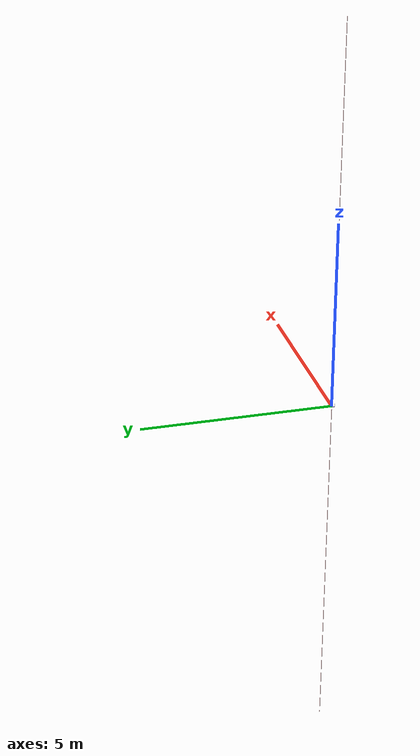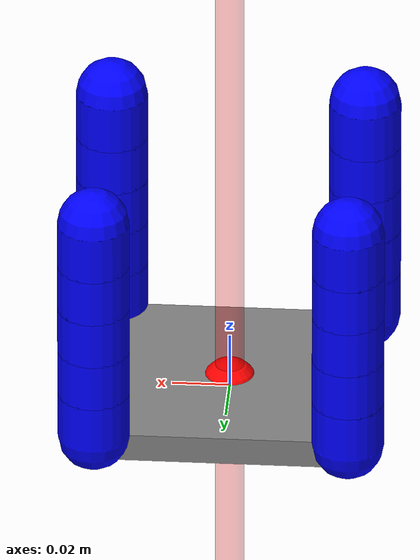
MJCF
<?xml version="1.0" ?>
<mujoco model="mgtest">
   <compiler inertiafromgeom="auto" angle="radian"/>
   <option timestep="0.001"/>
   <visual>
      <map fogstart="3" fogend="5" force="0.1" znear="0.1"/>
      <quality shadowsize="2048"/>
      <global offwidth="800" offheight="800"/>
   </visual>
   <asset>
      <texture name="texgeom" type="cube" builtin="flat" mark="cross" width="127" height="1278" rgb1="0.8 0.6 0.4" rgb2="0.8 0.6 0.4" markrgb="1 1 1" random="0.01"/>
      <material name="geom" texture="texgeom" texuniform="true"/>
   </asset>
   <worldbody>
      <light directional="true" diffuse=".8 .8 .8" specular="0.3 0.3 0.3" pos="0 0 4.0" dir="0 -.15 -1"/>
      <body name="body0" pos="0 0 0" euler="0 3.1415 0">
         <geom size="0.044 0.044 0.005" type="box" contype="1" conaffinity="3" condim="4"/>
         <site pos="0 0 0" name="ft_frame" size="0.01 0.01 0.01" rgba="1 0 0 1" type="sphere" group="1"/>
         <site pos="0 0 0.097" name="grip_site" size="0.01 0.01 0.01" rgba="1 0 0 0.5" type="sphere" group="1"/>
         <site pos="0 0 0" name="grip_site_cylinder" size="0.005 10" rgba="1 0 0 0.3" type="cylinder" group="1"/>
         <body name="body1" pos="0.044 0.044 -0.005">
            <inertial pos="0.044 0.044 -0.005" mass="0.1" diaginertia="0.01 0.01 0.01"/>
            <geom name="finger0_1" size="0.0125" type="capsule" density="1000.0" rgba="0 0 1 1" friction="4 0.005 0.0002" group="1" fromto="0.0 0.0 0.0 0.0 0.0 -0.017"/>
            <joint name="joint_0_0" type="hinge" pos="0.044 0.044 0.0" axis="1 0 0" damping="0.01" limited="true" range="-0.3 0.3" stiffness="10.0"/>
            <joint name="joint_1_1" type="hinge" pos="0.044 0.044 0.0" axis="0.0 0.2666840128117188 0.9637840200535798" damping="0.01" limited="true" range="-0.3 0.3" stiffness="10.0"/>
            <joint name="joint_1_2" type="hinge" pos="0.044 0.044 0.0" axis="0.0 -0.9637840200535798 0.2666840128117188" damping="0.01" limited="true" range="-0.3 0.3" stiffness="10.0"/>
            <body name="body2" pos="0.0 0.0 -0.017">
               <inertial pos="0.0 0.0 -0.017" mass="0.1" diaginertia="0.01 0.01 0.01"/>
               <geom name="finger0_2" size="0.0125" type="capsule" density="1000.0" rgba="0 0 1 1" friction="4 0.005 0.0002" group="1" fromto="0.0 0.0 -0.0 0.0 0.0 -0.017"/>
               <joint name="joint_1_0" type="hinge" pos="0.0 0.0 -0.0" axis="1 0 0" damping="0.01" limited="true" range="-0.3 0.3" stiffness="10.0"/>
               <joint name="joint_2_1" type="hinge" pos="0.0 0.0 -0.0" axis="0.0 -0.1355205436591015 -0.9907745365350997" damping="0.01" limited="true" range="-0.3 0.3" stiffness="10.0"/>
               <joint name="joint_2_2" type="hinge" pos="0.0 0.0 -0.0" axis="0.0 0.9907745365350997 -0.1355205436591015" damping="0.01" limited="true" range="-0.3 0.3" stiffness="10.0"/>
               <body name="body3" pos="0.0 0.0 -0.017">
                  <inertial pos="0.0 0.0 -0.017" mass="0.1" diaginertia="0.01 0.01 0.01"/>
                  <geom name="finger0_3" size="0.0125" type="capsule" density="1000.0" rgba="0 0 1 1" friction="4 0.005 0.0002" group="1" fromto="0.0 0.0 -0.0 0.0 0.0 -0.017"/>
                  <joint name="joint_2_0" type="hinge" pos="0.0 0.0 -0.0" axis="1 0 0" damping="0.01" limited="true" range="-0.3 0.3" stiffness="10.0"/>
                  <joint name="joint_3_1" type="hinge" pos="0.0 0.0 -0.0" axis="0.0 0.5514491728740724 0.8342084929659379" damping="0.01" limited="true" range="-0.3 0.3" stiffness="10.0"/>
                  <joint name="joint_3_2" type="hinge" pos="0.0 0.0 -0.0" axis="0.0 -0.8342084929659379 0.5514491728740724" damping="0.01" limited="true" range="-0.3 0.3" stiffness="10.0"/>
                  <body name="body4" pos="0.0 0.0 -0.017">
                     <inertial pos="0.0 0.0 -0.017" mass="0.1" diaginertia="0.01 0.01 0.01"/>
                     <geom name="finger0_4" size="0.0125" type="capsule" density="1000.0" rgba="0 0 1 1" friction="4 0.005 0.0002" group="1" fromto="0.0 0.0 -0.0 0.0 0.0 -0.017"/>
                     <joint name="joint_3_0" type="hinge" pos="0.0 0.0 -0.0" axis="1 0 0" damping="0.01" limited="true" range="-0.3 0.3" stiffness="10.0"/>
                     <joint name="joint_4_1" type="hinge" pos="0.0 0.0 -0.0" axis="0.0 -0.4134496815716305 -0.9105269687430007" damping="0.01" limited="true" range="-0.3 0.3" stiffness="10.0"/>
                     <joint name="joint_4_2" type="hinge" pos="0.0 0.0 -0.0" axis="0.0 0.9105269687430007 -0.4134496815716305" damping="0.01" limited="true" range="-0.3 0.3" stiffness="10.0"/>
                     <body name="body5" pos="0.0 0.0 -0.017">
                        <inertial pos="0.0 0.0 -0.017" mass="0.1" diaginertia="0.01 0.01 0.01"/>
                        <geom name="finger0_5" size="0.0125" type="capsule" density="1000.0" rgba="0 0 1 1" friction="4 0.005 0.0002" group="1" fromto="0.0 0.0 -0.0 0.0 0.0 -0.017"/>
                        <joint name="joint_4_0" type="hinge" pos="0.0 0.0 -0.0" axis="1 0 0" damping="0.01" limited="true" range="-0.3 0.3" stiffness="10.0"/>
                        <joint name="joint_5_1" type="hinge" pos="0.0 0.0 -0.0" axis="0.0 -0.100261801372647 0.994961090287209" damping="0.01" limited="true" range="-0.3 0.3" stiffness="10.0"/>
                        <joint name="joint_5_2" type="hinge" pos="0.0 0.0 -0.0" axis="0.0 -0.994961090287209 -0.100261801372647" damping="0.01" limited="true" range="-0.3 0.3" stiffness="10.0"/>
                     </body>
                  </body>
               </body>
            </body>
         </body>
         <body name="body6" pos="0.044 -0.044 -0.005">
            <inertial pos="0.044 -0.044 -0.005" mass="0.1" diaginertia="0.01 0.01 0.01"/>
            <geom name="finger1_0" size="0.0125" type="capsule" density="1000.0" rgba="0 0 1 1" friction="4 0.005 0.0002" group="1" fromto="0.0 -0.0 0.0 0.0 0.0 -0.017"/>
            <joint name="joint_5_0" type="hinge" pos="0.044 -0.044 0.0" axis="-1 0 0" damping="0.01" limited="true" range="-0.3 0.3" stiffness="10.0"/>
            <joint name="joint_6_1" type="hinge" pos="0.044 -0.044 0.0" axis="0.0 -0.2624792824472494 0.9649376281843178" damping="0.01" limited="true" range="-0.3 0.3" stiffness="10.0"/>
            <joint name="joint_6_2" type="hinge" pos="0.044 -0.044 0.0" axis="0.0 0.9649376281843178 0.2624792824472494" damping="0.01" limited="true" range="-0.3 0.3" stiffness="10.0"/>
            <body name="body7" pos="0.0 0.0 -0.017">
               <inertial pos="0.0 0.0 -0.017" mass="0.1" diaginertia="0.01 0.01 0.01"/>
               <geom name="finger1_1" size="0.0125" type="capsule" density="1000.0" rgba="0 0 1 1" friction="4 0.005 0.0002" group="1" fromto="0.0 0.0 -0.0 0.0 0.0 -0.017"/>
               <joint name="joint_6_0" type="hinge" pos="0.0 0.0 -0.0" axis="-1 0 0" damping="0.01" limited="true" range="-0.3 0.3" stiffness="10.0"/>
               <joint name="joint_7_1" type="hinge" pos="0.0 0.0 -0.0" axis="0.0 -0.6328168097950548 -0.774301546712138" damping="0.01" limited="true" range="-0.3 0.3" stiffness="10.0"/>
               <joint name="joint_7_2" type="hinge" pos="0.0 0.0 -0.0" axis="0.0 -0.774301546712138 0.6328168097950548" damping="0.01" limited="true" range="-0.3 0.3" stiffness="10.0"/>
               <body name="body8" pos="0.0 0.0 -0.017">
                  <inertial pos="0.0 0.0 -0.017" mass="0.1" diaginertia="0.01 0.01 0.01"/>
                  <geom name="finger1_2" size="0.0125" type="capsule" density="1000.0" rgba="0 0 1 1" friction="4 0.005 0.0002" group="1" fromto="0.0 0.0 -0.0 0.0 0.0 -0.017"/>
                  <joint name="joint_7_0" type="hinge" pos="0.0 0.0 -0.0" axis="-1 0 0" damping="0.01" limited="true" range="-0.3 0.3" stiffness="10.0"/>
                  <joint name="joint_8_1" type="hinge" pos="0.0 0.0 -0.0" axis="0.0 0.2273141069556877 -0.9738214912287253" damping="0.01" limited="true" range="-0.3 0.3" stiffness="10.0"/>
                  <joint name="joint_8_2" type="hinge" pos="0.0 0.0 -0.0" axis="-0.0 -0.9738214912287253 -0.2273141069556877" damping="0.01" limited="true" range="-0.3 0.3" stiffness="10.0"/>
                  <body name="body9" pos="0.0 0.0 -0.017">
                     <inertial pos="0.0 0.0 -0.017" mass="0.1" diaginertia="0.01 0.01 0.01"/>
                     <geom name="finger1_3" size="0.0125" type="capsule" density="1000.0" rgba="0 0 1 1" friction="4 0.005 0.0002" group="1" fromto="0.0 0.0 -0.0 0.0 0.0 -0.017"/>
                     <joint name="joint_8_0" type="hinge" pos="0.0 0.0 -0.0" axis="-1 0 0" damping="0.01" limited="true" range="-0.3 0.3" stiffness="10.0"/>
                     <joint name="joint_9_1" type="hinge" pos="0.0 0.0 -0.0" axis="0.0 -0.9560864277500594 -0.29308487281354295" damping="0.01" limited="true" range="-0.3 0.3" stiffness="10.0"/>
                     <joint name="joint_9_2" type="hinge" pos="0.0 0.0 -0.0" axis="0.0 -0.29308487281354295 0.9560864277500594" damping="0.01" limited="true" range="-0.3 0.3" stiffness="10.0"/>
                     <body name="body10" pos="0.0 0.0 -0.017">
                        <inertial pos="0.0 0.0 -0.017" mass="0.1" diaginertia="0.01 0.01 0.01"/>
                        <geom name="finger1_4" size="0.0125" type="capsule" density="1000.0" rgba="0 0 1 1" friction="4 0.005 0.0002" group="1" fromto="0.0 0.0 -0.0 0.0 0.0 -0.017"/>
                        <joint name="joint_9_0" type="hinge" pos="0.0 0.0 -0.0" axis="-1 0 0" damping="0.01" limited="true" range="-0.3 0.3" stiffness="10.0"/>
                        <joint name="joint_10_1" type="hinge" pos="0.0 0.0 -0.0" axis="0.0 0.8708376671266949 -0.4915707044905503" damping="0.01" limited="true" range="-0.3 0.3" stiffness="10.0"/>
                        <joint name="joint_10_2" type="hinge" pos="0.0 0.0 -0.0" axis="-0.0 -0.4915707044905503 -0.8708376671266949" damping="0.01" limited="true" range="-0.3 0.3" stiffness="10.0"/>
                     </body>
                  </body>
               </body>
            </body>
         </body>
         <body name="body11" pos="-0.044 0.044 -0.005">
            <inertial pos="-0.044 0.044 -0.005" mass="0.1" diaginertia="0.01 0.01 0.01"/>
            <geom name="finger1_5" size="0.0125" type="capsule" density="1000.0" rgba="0 0 1 1" friction="4 0.005 0.0002" group="1" fromto="-0.0 0.0 0.0 0.0 0.0 -0.017"/>
            <joint name="joint_10_0" type="hinge" pos="-0.044 0.044 0.0" axis="1 0 0" damping="0.01" limited="true" range="-0.3 0.3" stiffness="10.0"/>
            <joint name="joint_11_1" type="hinge" pos="-0.044 0.044 0.0" axis="0.0 -0.6192651039829784 0.7851819731686094" damping="0.01" limited="true" range="-0.3 0.3" stiffness="10.0"/>
            <joint name="joint_11_2" type="hinge" pos="-0.044 0.044 0.0" axis="0.0 -0.7851819731686094 -0.6192651039829784" damping="0.01" limited="true" range="-0.3 0.3" stiffness="10.0"/>
            <body name="body12" pos="0.0 0.0 -0.017">
               <inertial pos="0.0 0.0 -0.017" mass="0.1" diaginertia="0.01 0.01 0.01"/>
               <geom name="finger2_0" size="0.0125" type="capsule" density="1000.0" rgba="0 0 1 1" friction="4 0.005 0.0002" group="1" fromto="0.0 0.0 -0.0 0.0 0.0 -0.017"/>
               <joint name="joint_11_0" type="hinge" pos="0.0 0.0 -0.0" axis="1 0 0" damping="0.01" limited="true" range="-0.3 0.3" stiffness="10.0"/>
               <joint name="joint_12_1" type="hinge" pos="0.0 0.0 -0.0" axis="0.0 0.8900027341641112 0.4559551876888849" damping="0.01" limited="true" range="-0.3 0.3" stiffness="10.0"/>
               <joint name="joint_12_2" type="hinge" pos="0.0 0.0 -0.0" axis="0.0 -0.4559551876888849 0.8900027341641112" damping="0.01" limited="true" range="-0.3 0.3" stiffness="10.0"/>
               <body name="body13" pos="0.0 0.0 -0.017">
                  <inertial pos="0.0 0.0 -0.017" mass="0.1" diaginertia="0.01 0.01 0.01"/>
                  <geom name="finger2_1" size="0.0125" type="capsule" density="1000.0" rgba="0 0 1 1" friction="4 0.005 0.0002" group="1" fromto="0.0 0.0 -0.0 0.0 0.0 -0.017"/>
                  <joint name="joint_12_0" type="hinge" pos="0.0 0.0 -0.0" axis="1 0 0" damping="0.01" limited="true" range="-0.3 0.3" stiffness="10.0"/>
                  <joint name="joint_13_1" type="hinge" pos="0.0 0.0 -0.0" axis="0.0 0.8919528358230068 -0.45212845372448773" damping="0.01" limited="true" range="-0.3 0.3" stiffness="10.0"/>
                  <joint name="joint_13_2" type="hinge" pos="0.0 0.0 -0.0" axis="-0.0 0.45212845372448773 0.8919528358230068" damping="0.01" limited="true" range="-0.3 0.3" stiffness="10.0"/>
                  <body name="body14" pos="0.0 0.0 -0.017">
                     <inertial pos="0.0 0.0 -0.017" mass="0.1" diaginertia="0.01 0.01 0.01"/>
                     <geom name="finger2_2" size="0.0125" type="capsule" density="1000.0" rgba="0 0 1 1" friction="4 0.005 0.0002" group="1" fromto="0.0 0.0 -0.0 0.0 0.0 -0.017"/>
                     <joint name="joint_13_0" type="hinge" pos="0.0 0.0 -0.0" axis="1 0 0" damping="0.01" limited="true" range="-0.3 0.3" stiffness="10.0"/>
                     <joint name="joint_14_1" type="hinge" pos="0.0 0.0 -0.0" axis="0.0 0.35811569009695643 -0.9336772207280098" damping="0.01" limited="true" range="-0.3 0.3" stiffness="10.0"/>
                     <joint name="joint_14_2" type="hinge" pos="0.0 0.0 -0.0" axis="-0.0 0.9336772207280098 0.35811569009695643" damping="0.01" limited="true" range="-0.3 0.3" stiffness="10.0"/>
                     <body name="body15" pos="0.0 0.0 -0.017">
                        <inertial pos="0.0 0.0 -0.017" mass="0.1" diaginertia="0.01 0.01 0.01"/>
                        <geom name="finger2_3" size="0.0125" type="capsule" density="1000.0" rgba="0 0 1 1" friction="4 0.005 0.0002" group="1" fromto="0.0 0.0 -0.0 0.0 0.0 -0.017"/>
                        <joint name="joint_14_0" type="hinge" pos="0.0 0.0 -0.0" axis="1 0 0" damping="0.01" limited="true" range="-0.3 0.3" stiffness="10.0"/>
                        <joint name="joint_15_1" type="hinge" pos="0.0 0.0 -0.0" axis="0.0 -0.22766179900639003 -0.9737402658169035" damping="0.01" limited="true" range="-0.3 0.3" stiffness="10.0"/>
                        <joint name="joint_15_2" type="hinge" pos="0.0 0.0 -0.0" axis="0.0 0.9737402658169035 -0.22766179900639003" damping="0.01" limited="true" range="-0.3 0.3" stiffness="10.0"/>
                     </body>
                  </body>
               </body>
            </body>
         </body>
         <body name="body16" pos="-0.044 -0.044 -0.005">
            <inertial pos="-0.044 -0.044 -0.005" mass="0.1" diaginertia="0.01 0.01 0.01"/>
            <geom name="finger2_4" size="0.0125" type="capsule" density="1000.0" rgba="0 0 1 1" friction="4 0.005 0.0002" group="1" fromto="-0.0 -0.0 0.0 0.0 0.0 -0.017"/>
            <joint name="joint_15_0" type="hinge" pos="-0.044 -0.044 0.0" axis="-1 0 0" damping="0.01" limited="true" range="-0.3 0.3" stiffness="10.0"/>
            <joint name="joint_16_1" type="hinge" pos="-0.044 -0.044 0.0" axis="0.0 -0.9841722851104546 -0.17721431437800403" damping="0.01" limited="true" range="-0.3 0.3" stiffness="10.0"/>
            <joint name="joint_16_2" type="hinge" pos="-0.044 -0.044 0.0" axis="0.0 -0.17721431437800403 0.9841722851104546" damping="0.01" limited="true" range="-0.3 0.3" stiffness="10.0"/>
            <body name="body17" pos="0.0 0.0 -0.017">
               <inertial pos="0.0 0.0 -0.017" mass="0.1" diaginertia="0.01 0.01 0.01"/>
               <geom name="finger2_5" size="0.0125" type="capsule" density="1000.0" rgba="0 0 1 1" friction="4 0.005 0.0002" group="1" fromto="0.0 0.0 -0.0 0.0 0.0 -0.017"/>
               <joint name="joint_16_0" type="hinge" pos="0.0 0.0 -0.0" axis="-1 0 0" damping="0.01" limited="true" range="-0.3 0.3" stiffness="10.0"/>
               <joint name="joint_17_1" type="hinge" pos="0.0 0.0 -0.0" axis="0.0 0.4195832047002552 0.9077168800531715" damping="0.01" limited="true" range="-0.3 0.3" stiffness="10.0"/>
               <joint name="joint_17_2" type="hinge" pos="0.0 0.0 -0.0" axis="0.0 0.9077168800531715 -0.4195832047002552" damping="0.01" limited="true" range="-0.3 0.3" stiffness="10.0"/>
               <body name="body18" pos="0.0 0.0 -0.017">
                  <inertial pos="0.0 0.0 -0.017" mass="0.1" diaginertia="0.01 0.01 0.01"/>
                  <geom name="finger3_0" size="0.0125" type="capsule" density="1000.0" rgba="0 0 1 1" friction="4 0.005 0.0002" group="1" fromto="0.0 0.0 -0.0 0.0 0.0 -0.017"/>
                  <joint name="joint_17_0" type="hinge" pos="0.0 0.0 -0.0" axis="-1 0 0" damping="0.01" limited="true" range="-0.3 0.3" stiffness="10.0"/>
                  <joint name="joint_18_1" type="hinge" pos="0.0 0.0 -0.0" axis="0.0 0.37391291873777444 0.9274638155750329" damping="0.01" limited="true" range="-0.3 0.3" stiffness="10.0"/>
                  <joint name="joint_18_2" type="hinge" pos="0.0 0.0 -0.0" axis="0.0 0.9274638155750329 -0.37391291873777444" damping="0.01" limited="true" range="-0.3 0.3" stiffness="10.0"/>
                  <body name="body19" pos="0.0 0.0 -0.017">
                     <inertial pos="0.0 0.0 -0.017" mass="0.1" diaginertia="0.01 0.01 0.01"/>
                     <geom name="finger3_1" size="0.0125" type="capsule" density="1000.0" rgba="0 0 1 1" friction="4 0.005 0.0002" group="1" fromto="0.0 0.0 -0.0 0.0 0.0 -0.017"/>
                     <joint name="joint_18_0" type="hinge" pos="0.0 0.0 -0.0" axis="-1 0 0" damping="0.01" limited="true" range="-0.3 0.3" stiffness="10.0"/>
                     <joint name="joint_19_1" type="hinge" pos="0.0 0.0 -0.0" axis="0.0 0.6753447289730936 0.7375022013853644" damping="0.01" limited="true" range="-0.3 0.3" stiffness="10.0"/>
                     <joint name="joint_19_2" type="hinge" pos="0.0 0.0 -0.0" axis="0.0 0.7375022013853644 -0.6753447289730936" damping="0.01" limited="true" range="-0.3 0.3" stiffness="10.0"/>
                     <body name="body20" pos="0.0 0.0 -0.017">
                        <inertial pos="0.0 0.0 -0.017" mass="0.1" diaginertia="0.01 0.01 0.01"/>
                        <geom name="finger3_2" size="0.0125" type="capsule" density="1000.0" rgba="0 0 1 1" friction="4 0.005 0.0002" group="1" fromto="0.0 0.0 -0.0 0.0 0.0 -0.017"/>
                        <joint name="joint_19_0" type="hinge" pos="0.0 0.0 -0.0" axis="-1 0 0" damping="0.01" limited="true" range="-0.3 0.3" stiffness="10.0"/>
                        <joint name="joint_20_1" type="hinge" pos="0.0 0.0 -0.0" axis="0.0 -0.8626394645922251 0.5058192899920279" damping="0.01" limited="true" range="-0.3 0.3" stiffness="10.0"/>
                        <joint name="joint_20_2" type="hinge" pos="0.0 0.0 -0.0" axis="0.0 0.5058192899920279 0.8626394645922251" damping="0.01" limited="true" range="-0.3 0.3" stiffness="10.0"/>
                     </body>
                  </body>
               </body>
            </body>
         </body>
      </body>
   </worldbody>
   <actuator>
      <motor name="joint_0_0_motor" gear="1.0" joint="joint_0_0" ctrllimited="true" ctrlrange="-1.0 1.0"/>
      <motor name="joint_1_0_motor" gear="1.0" joint="joint_1_0" ctrllimited="true" ctrlrange="-1.0 1.0"/>
      <motor name="joint_2_0_motor" gear="1.0" joint="joint_2_0" ctrllimited="true" ctrlrange="-1.0 1.0"/>
      <motor name="joint_3_0_motor" gear="1.0" joint="joint_3_0" ctrllimited="true" ctrlrange="-1.0 1.0"/>
      <motor name="joint_4_0_motor" gear="1.0" joint="joint_4_0" ctrllimited="true" ctrlrange="-1.0 1.0"/>
      <motor name="joint_5_0_motor" gear="1.0" joint="joint_5_0" ctrllimited="true" ctrlrange="-1.0 1.0"/>
      <motor name="joint_6_0_motor" gear="1.0" joint="joint_6_0" ctrllimited="true" ctrlrange="-1.0 1.0"/>
      <motor name="joint_7_0_motor" gear="1.0" joint="joint_7_0" ctrllimited="true" ctrlrange="-1.0 1.0"/>
      <motor name="joint_8_0_motor" gear="1.0" joint="joint_8_0" ctrllimited="true" ctrlrange="-1.0 1.0"/>
      <motor name="joint_9_0_motor" gear="1.0" joint="joint_9_0" ctrllimited="true" ctrlrange="-1.0 1.0"/>
      <motor name="joint_10_0_motor" gear="1.0" joint="joint_10_0" ctrllimited="true" ctrlrange="-1.0 1.0"/>
      <motor name="joint_11_0_motor" gear="1.0" joint="joint_11_0" ctrllimited="true" ctrlrange="-1.0 1.0"/>
      <motor name="joint_12_0_motor" gear="1.0" joint="joint_12_0" ctrllimited="true" ctrlrange="-1.0 1.0"/>
      <motor name="joint_13_0_motor" gear="1.0" joint="joint_13_0" ctrllimited="true" ctrlrange="-1.0 1.0"/>
      <motor name="joint_14_0_motor" gear="1.0" joint="joint_14_0" ctrllimited="true" ctrlrange="-1.0 1.0"/>
      <motor name="joint_15_0_motor" gear="1.0" joint="joint_15_0" ctrllimited="true" ctrlrange="-1.0 1.0"/>
      <motor name="joint_16_0_motor" gear="1.0" joint="joint_16_0" ctrllimited="true" ctrlrange="-1.0 1.0"/>
      <motor name="joint_17_0_motor" gear="1.0" joint="joint_17_0" ctrllimited="true" ctrlrange="-1.0 1.0"/>
      <motor name="joint_18_0_motor" gear="1.0" joint="joint_18_0" ctrllimited="true" ctrlrange="-1.0 1.0"/>
      <motor name="joint_19_0_motor" gear="1.0" joint="joint_19_0" ctrllimited="true" ctrlrange="-1.0 1.0"/>
   </actuator>
   <sensor>
      <force name="force_ee" site="ft_frame"/>
      <torque name="torque_ee" site="ft_frame"/>
   </sensor>
</mujoco>
